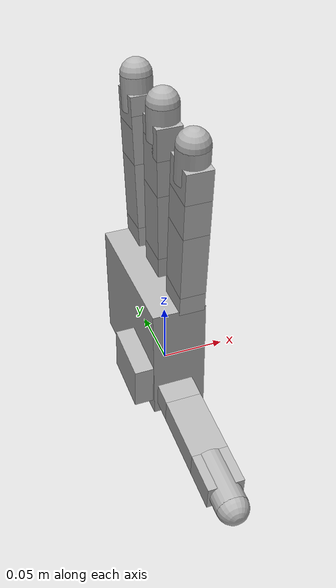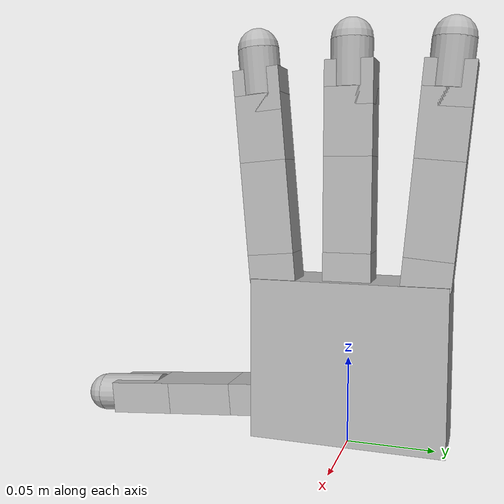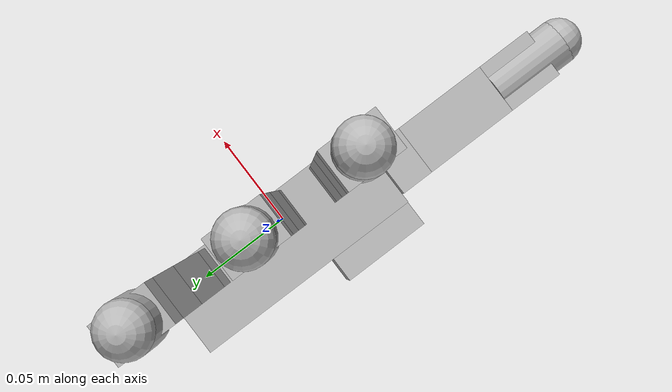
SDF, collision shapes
<?xml version="1.0"?>
<sdf version="1.7">
  <model name="algr_lh_simplified">
    <link name="algr_lh_palm">
      <inertial>
        <mass>0.4154</mass>
        <inertia>
          <ixx>    2.089e-03</ixx>
          <ixy>-0.003635e-03</ixy>
          <ixz>   0.2233e-03</ixz>
          <iyy>    1.829e-03</iyy>
          <iyz> -0.01756e-03</iyz>
          <izz>   0.4825e-03</izz>
        </inertia>
      </inertial>
      <collision name="algr_lh_palm_collision">
        <pose>-0.0093 0 0.0475 0 0 0</pose>
        <geometry>
          <box>
            <size>0.0408 0.113 0.095</size>
          </box>
        </geometry>
      </collision>
      <visual name="algr_lh_palm_visual">
        <pose>0 0 0.095 -1.5708 0 0</pose>
        <geometry>
          <mesh>
            <scale>1 1 1</scale>
            <uri>package://frogger/models/allegro/meshes/base_link_left.obj</uri>
          </mesh>
        </geometry>
      </visual>
    </link>
    <link name="algr_lh_if_bs">
      <pose>0 -0.0435 0.093458 0.087267 0 0</pose>
      <inertial>
        <mass>0.0119</mass>
        <inertia>
          <ixx>   1.954e-06</ixx>
          <ixy>0.003034e-06</ixy>
          <ixz> 0.08923e-06</ixz>
          <iyy>   1.179e-06</iyy>
          <iyz>-0.03707e-06</iyz>
          <izz>   1.497e-06</izz>
        </inertia>
      </inertial>
      <collision name="algr_lh_if_bs_collision">
        <pose>0 0 0.0082 0 0 0</pose>
        <geometry>
          <box>
            <size>0.0196 0.0275 0.0164</size>
          </box>
        </geometry>
      </collision>
      <visual name="algr_lh_if_bs_visual">
        <geometry>
          <mesh>
            <scale>1 1 1</scale>
            <uri>package://frogger/models/allegro/meshes/link_0.0.obj</uri>
          </mesh>
        </geometry>
      </visual>
    </link>
    <joint name="algr_lh_if_axl" type="revolute">
      <child>algr_lh_if_bs</child>
      <parent>algr_lh_palm</parent>
      <axis>
        <xyz expressed_in="__model__">0 -0.087156 0.996195</xyz>
        <limit>
          <lower>-0.47</lower>
          <upper>0.47</upper>
          <effort>0.7</effort>
        </limit>
        <dynamics>
          <damping>1.5e-2</damping>
        </dynamics>
      </axis>
    </joint>
    <link name="algr_lh_if_px">
      <pose>0 -0.044929 0.109796 0.087267 0 0</pose>
      <inertial>
        <mass>0.065</mass>
        <inertia>
          <ixx>  7.192e-05</ixx>
          <ixy>          0</ixy>
          <ixz>          0</ixz>
          <iyy>  7.438e-05</iyy>
          <iyz>0.07322e-05</iyz>
          <izz> 0.5406e-05</izz>
        </inertia>
      </inertial>
      <collision name="algr_lh_if_px_collision">
        <pose>0 0 0.027 0 0 0</pose>
        <geometry>
          <box>
            <size>0.0196 0.0275 0.054</size>
          </box>
        </geometry>
      </collision>
      <visual name="algr_lh_if_px_visual">
        <geometry>
          <mesh>
            <scale>1 1 1</scale>
            <uri>package://frogger/models/allegro/meshes/link_1.0.obj</uri>
          </mesh>
        </geometry>
      </visual>
    </link>
    <joint name="algr_lh_if_mcp" type="revolute">
      <child>algr_lh_if_px</child>
      <parent>algr_lh_if_bs</parent>
      <axis>
        <xyz expressed_in="__model__">0 0.996195 0.087156</xyz>
        <limit>
          <lower>-0.196</lower>
          <upper>1.61</upper>
          <effort>0.7</effort>
        </limit>
        <dynamics>
          <damping>1.5e-2</damping>
        </dynamics>
      </axis>
    </joint>
    <link name="algr_lh_if_md">
      <pose>0 -0.049636 0.16359 0.087267 0 0</pose>
      <inertial>
        <mass>0.0355</mass>
        <inertia>
          <ixx>     3.169e-05</ixx>
          <ixy> 0.0001071e-05</ixy>
          <ixz>-0.0004913e-05</ixz>
          <iyy>     3.105e-05</iyy>
          <iyz>  0.003875e-05</iyz>
          <izz>    0.3203e-05</izz>
        </inertia>
      </inertial>
      <collision name="algr_lh_if_md_collision">
        <pose>0 0 0.0192 0 0 0</pose>
        <geometry>
          <box>
            <size>0.0196 0.0275 0.0384</size>
          </box>
        </geometry>
      </collision>
      <visual name="algr_lh_if_md_visual">
        <geometry>
          <mesh>
            <scale>1 1 1</scale>
            <uri>package://frogger/models/allegro/meshes/link_2.0.obj</uri>
          </mesh>
        </geometry>
      </visual>
    </link>
    <joint name="algr_lh_if_pip" type="revolute">
      <child>algr_lh_if_md</child>
      <parent>algr_lh_if_px</parent>
      <axis>
        <xyz expressed_in="__model__">0 0.996195 0.087156</xyz>
        <limit>
          <lower>-0.174</lower>
          <upper>1.709</upper>
          <effort>0.7</effort>
        </limit>
        <dynamics>
          <damping>1.5e-2</damping>
        </dynamics>
      </axis>
    </joint>
    <link name="algr_lh_if_ds">
      <pose>0 -0.052983 0.201844 0.087267 0 0</pose>
      <inertial>
        <mass>0.0264</mass>
        <inertia>
          <ixx>   1.263e-05</ixx>
          <ixy> 0.00021e-05</ixy>
          <ixz>-0.00098e-05</ixz>
          <iyy>   1.182e-05</iyy>
          <iyz> -0.0013e-05</iyz>
          <izz>  0.2484e-05</izz>
        </inertia>
      </inertial>
      <collision name="algr_lh_if_ds_collision_1">
        <pose>0 0 0.00235 0 0 0</pose>
        <geometry>
          <box>
            <size>0.0196 0.0275 0.0247</size>
          </box>
        </geometry>
      </collision>
      <collision name="algr_lh_if_ds_tip_collision_1_FROGGERCOL">
        <pose>0 0 0.0267 0 0 0</pose>
        <geometry>
          <sphere>
            <radius>0.012</radius>
          </sphere>
        </geometry>
        <drake:proximity_properties>
          <drake:rigid_hydroelastic/>
          <drake:mesh_resolution_hint>0.1</drake:mesh_resolution_hint>
          <drake:hunt_crossley_dissipation>1.0</drake:hunt_crossley_dissipation>
        </drake:proximity_properties>
      </collision>
      <collision name="algr_lh_if_ds_tip_collision_2_FROGGERCOL">
        <pose>0 0 0.01335 0 0 0</pose>
        <geometry>
          <cylinder>
            <length>0.0267</length>
            <radius>0.012</radius>
          </cylinder>
        </geometry>
      </collision>
      <visual name="algr_lh_if_ds_visual">
        <geometry>
          <mesh>
            <scale>1 1 1</scale>
            <uri>package://frogger/models/allegro/meshes/link_3.0.obj</uri>
          </mesh>
        </geometry>
      </visual>
      <visual name="algr_lh_if_ds_tip_visual_1">
        <pose>0 0 0.0267 0 0 0</pose>
        <geometry>
          <mesh>
            <scale>1 1 1</scale>
            <uri>package://frogger/models/allegro/meshes/link_3.0_tip.obj</uri>
          </mesh>
        </geometry>
      </visual>
    </link>
    <joint name="algr_lh_if_dip" type="revolute">
      <child>algr_lh_if_ds</child>
      <parent>algr_lh_if_md</parent>
      <axis>
        <xyz expressed_in="__model__">0 0.996195 0.087156</xyz>
        <limit>
          <lower>-0.227</lower>
          <upper>1.618</upper>
          <effort>0.7</effort>
        </limit>
        <dynamics>
          <damping>1.5e-2</damping>
        </dynamics>
      </axis>
    </joint>
    <link name="algr_lh_mf_bs">
      <pose>0 0 0.0957 0 0 0</pose>
      <inertial>
        <mass>0.0119</mass>
        <inertia>
          <ixx>   1.954e-06</ixx>
          <ixy>0.003034e-06</ixy>
          <ixz> 0.08923e-06</ixz>
          <iyy>   1.179e-06</iyy>
          <iyz>-0.03707e-06</iyz>
          <izz>   1.497e-06</izz>
        </inertia>
      </inertial>
      <collision name="algr_lh_mf_bs_collision">
        <pose>0 0 0.0082 0 0 0</pose>
        <geometry>
          <box>
            <size>0.0196 0.0275 0.0164</size>
          </box>
        </geometry>
      </collision>
      <visual name="algr_lh_mf_bs_visual">
        <geometry>
          <mesh>
            <scale>1 1 1</scale>
            <uri>package://frogger/models/allegro/meshes/link_0.0.obj</uri>
          </mesh>
        </geometry>
      </visual>
    </link>
    <joint name="algr_lh_mf_axl" type="revolute">
      <child>algr_lh_mf_bs</child>
      <parent>algr_lh_palm</parent>
      <axis>
        <xyz expressed_in="__model__">0 0 1</xyz>
        <limit>
          <lower>-0.47</lower>
          <upper>0.47</upper>
          <effort>0.7</effort>
        </limit>
        <dynamics>
          <damping>1.5e-2</damping>
        </dynamics>
      </axis>
    </joint>
    <link name="algr_lh_mf_px">
      <pose>0 0 0.1121 0 0 0</pose>
      <inertial>
        <mass>0.065</mass>
        <inertia>
          <ixx>  7.192e-05</ixx>
          <ixy>          0</ixy>
          <ixz>          0</ixz>
          <iyy>  7.438e-05</iyy>
          <iyz>0.07322e-05</iyz>
          <izz> 0.5406e-05</izz>
        </inertia>
      </inertial>
      <collision name="algr_lh_mf_px_collision">
        <pose>0 0 0.027 0 0 0</pose>
        <geometry>
          <box>
            <size>0.0196 0.0275 0.054</size>
          </box>
        </geometry>
      </collision>
      <visual name="algr_lh_mf_px_visual">
        <geometry>
          <mesh>
            <scale>1 1 1</scale>
            <uri>package://frogger/models/allegro/meshes/link_1.0.obj</uri>
          </mesh>
        </geometry>
      </visual>
    </link>
    <joint name="algr_lh_mf_mcp" type="revolute">
      <child>algr_lh_mf_px</child>
      <parent>algr_lh_mf_bs</parent>
      <axis>
        <xyz expressed_in="__model__">0 1 0</xyz>
        <limit>
          <lower>-0.196</lower>
          <upper>1.61</upper>
          <effort>0.7</effort>
        </limit>
        <dynamics>
          <damping>1.5e-2</damping>
        </dynamics>
      </axis>
    </joint>
    <link name="algr_lh_mf_md">
      <pose>0 0 0.1661 0 0 0</pose>
      <inertial>
        <mass>0.0355</mass>
        <inertia>
          <ixx>     3.169e-05</ixx>
          <ixy> 0.0001071e-05</ixy>
          <ixz>-0.0004913e-05</ixz>
          <iyy>     3.105e-05</iyy>
          <iyz>  0.003875e-05</iyz>
          <izz>    0.3203e-05</izz>
        </inertia>
      </inertial>
      <collision name="algr_lh_mf_md_collision">
        <pose>0 0 0.0192 0 0 0</pose>
        <geometry>
          <box>
            <size>0.0196 0.0275 0.0384</size>
          </box>
        </geometry>
      </collision>
      <visual name="algr_lh_mf_md_visual">
        <geometry>
          <mesh>
            <scale>1 1 1</scale>
            <uri>package://frogger/models/allegro/meshes/link_2.0.obj</uri>
          </mesh>
        </geometry>
      </visual>
    </link>
    <joint name="algr_lh_mf_pip" type="revolute">
      <child>algr_lh_mf_md</child>
      <parent>algr_lh_mf_px</parent>
      <axis>
        <xyz expressed_in="__model__">0 1 0</xyz>
        <limit>
          <lower>-0.174</lower>
          <upper>1.709</upper>
          <effort>0.7</effort>
        </limit>
        <dynamics>
          <damping>1.5e-2</damping>
        </dynamics>
      </axis>
    </joint>
    <link name="algr_lh_mf_ds">
      <pose>0 0 0.2045 0 0 0</pose>
      <inertial>
        <mass>0.0264</mass>
        <inertia>
          <ixx>   1.263e-05</ixx>
          <ixy> 0.00021e-05</ixy>
          <ixz>-0.00098e-05</ixz>
          <iyy>   1.182e-05</iyy>
          <iyz> -0.0013e-05</iyz>
          <izz>  0.2484e-05</izz>
        </inertia>
      </inertial>
      <collision name="algr_lh_mf_ds_collision_1">
        <pose>0 0 0.00235 0 0 0</pose>
        <geometry>
          <box>
            <size>0.0196 0.0275 0.0247</size>
          </box>
        </geometry>
      </collision>
      <collision name="algr_lh_mf_ds_tip_collision_1_FROGGERCOL">
        <pose>0 0 0.0267 0 0 0</pose>
        <geometry>
          <sphere>
            <radius>0.012</radius>
          </sphere>
        </geometry>
        <drake:proximity_properties>
          <drake:rigid_hydroelastic/>
          <drake:mesh_resolution_hint>0.1</drake:mesh_resolution_hint>
          <drake:hunt_crossley_dissipation>1.0</drake:hunt_crossley_dissipation>
        </drake:proximity_properties>
      </collision>
      <collision name="algr_lh_mf_ds_tip_collision_2_FROGGERCOL">
        <pose>0 0 0.01335 0 0 0</pose>
        <geometry>
          <cylinder>
            <length>0.0267</length>
            <radius>0.012</radius>
          </cylinder>
        </geometry>
      </collision>
      <visual name="algr_lh_mf_ds_visual">
        <geometry>
          <mesh>
            <scale>1 1 1</scale>
            <uri>package://frogger/models/allegro/meshes/link_3.0.obj</uri>
          </mesh>
        </geometry>
      </visual>
      <visual name="algr_lh_mf_ds_tip_visual_1">
        <pose>0 0 0.0267 0 0 0</pose>
        <geometry>
          <mesh>
            <scale>1 1 1</scale>
            <uri>package://frogger/models/allegro/meshes/link_3.0_tip.obj</uri>
          </mesh>
        </geometry>
      </visual>
    </link>
    <joint name="algr_lh_mf_dip" type="revolute">
      <child>algr_lh_mf_ds</child>
      <parent>algr_lh_mf_md</parent>
      <axis>
        <xyz expressed_in="__model__">0 1 0</xyz>
        <limit>
          <lower>-0.227</lower>
          <upper>1.618</upper>
          <effort>0.7</effort>
        </limit>
        <dynamics>
          <damping>1.5e-2</damping>
        </dynamics>
      </axis>
    </joint>
    <link name="algr_lh_rf_bs">
      <pose>0 0.0435 0.093458 -0.087267 0 0</pose>
      <inertial>
        <mass>0.0119</mass>
        <inertia>
          <ixx>   1.954e-06</ixx>
          <ixy>0.003034e-06</ixy>
          <ixz> 0.08923e-06</ixz>
          <iyy>   1.179e-06</iyy>
          <iyz>-0.03707e-06</iyz>
          <izz>   1.497e-06</izz>
        </inertia>
      </inertial>
      <collision name="algr_lh_rf_bs_collision">
        <pose>0 0 0.0082 0 0 0</pose>
        <geometry>
          <box>
            <size>0.0196 0.0275 0.0164</size>
          </box>
        </geometry>
      </collision>
      <visual name="algr_lh_rf_bs_visual">
        <geometry>
          <mesh>
            <scale>1 1 1</scale>
            <uri>package://frogger/models/allegro/meshes/link_0.0.obj</uri>
          </mesh>
        </geometry>
      </visual>
    </link>
    <joint name="algr_lh_rf_axl" type="revolute">
      <child>algr_lh_rf_bs</child>
      <parent>algr_lh_palm</parent>
      <axis>
        <xyz expressed_in="__model__">0 0.087156 0.996195</xyz>
        <limit>
          <lower>-0.47</lower>
          <upper>0.47</upper>
          <effort>0.7</effort>
        </limit>
        <dynamics>
          <damping>1.5e-2</damping>
        </dynamics>
      </axis>
    </joint>
    <link name="algr_lh_rf_px">
      <pose>0 0.044929 0.109796 -0.087267 0 0</pose>
      <inertial>
        <mass>0.065</mass>
        <inertia>
          <ixx>  7.192e-05</ixx>
          <ixy>          0</ixy>
          <ixz>          0</ixz>
          <iyy>  7.438e-05</iyy>
          <iyz>0.07322e-05</iyz>
          <izz> 0.5406e-05</izz>
        </inertia>
      </inertial>
      <collision name="algr_lh_rf_px_collision">
        <pose>0 0 0.027 0 0 0</pose>
        <geometry>
          <box>
            <size>0.0196 0.0275 0.054</size>
          </box>
        </geometry>
      </collision>
      <visual name="algr_lh_rf_px_visual">
        <geometry>
          <mesh>
            <scale>1 1 1</scale>
            <uri>package://frogger/models/allegro/meshes/link_1.0.obj</uri>
          </mesh>
        </geometry>
      </visual>
    </link>
    <joint name="algr_lh_rf_mcp" type="revolute">
      <child>algr_lh_rf_px</child>
      <parent>algr_lh_rf_bs</parent>
      <axis>
        <xyz expressed_in="__model__">0 0.996195 -0.087156</xyz>
        <limit>
          <lower>-0.196</lower>
          <upper>1.61</upper>
          <effort>0.7</effort>
        </limit>
        <dynamics>
          <damping>1.5e-2</damping>
        </dynamics>
      </axis>
    </joint>
    <link name="algr_lh_rf_md">
      <pose>0 0.049636 0.16359 -0.087267 0 0</pose>
      <inertial>
        <mass>0.0355</mass>
        <inertia>
          <ixx>     3.169e-05</ixx>
          <ixy> 0.0001071e-05</ixy>
          <ixz>-0.0004913e-05</ixz>
          <iyy>     3.105e-05</iyy>
          <iyz>  0.003875e-05</iyz>
          <izz>    0.3203e-05</izz>
        </inertia>
      </inertial>
      <collision name="algr_lh_rf_md_collision">
        <pose>0 0 0.0192 0 0 0</pose>
        <geometry>
          <box>
            <size>0.0196 0.0275 0.0384</size>
          </box>
        </geometry>
      </collision>
      <visual name="algr_lh_rf_md_visual">
        <geometry>
          <mesh>
            <scale>1 1 1</scale>
            <uri>package://frogger/models/allegro/meshes/link_2.0.obj</uri>
          </mesh>
        </geometry>
      </visual>
    </link>
    <joint name="algr_lh_rf_pip" type="revolute">
      <child>algr_lh_rf_md</child>
      <parent>algr_lh_rf_px</parent>
      <axis>
        <xyz expressed_in="__model__">0 0.996195 -0.087156</xyz>
        <limit>
          <lower>-0.174</lower>
          <upper>1.709</upper>
          <effort>0.7</effort>
        </limit>
        <dynamics>
          <damping>1.5e-2</damping>
        </dynamics>
      </axis>
    </joint>
    <link name="algr_lh_rf_ds">
      <pose>0 0.052983 0.201844 -0.087267 0 0</pose>
      <inertial>
        <mass>0.0264</mass>
        <inertia>
          <ixx>   1.263e-05</ixx>
          <ixy> 0.00021e-05</ixy>
          <ixz>-0.00098e-05</ixz>
          <iyy>   1.182e-05</iyy>
          <iyz> -0.0013e-05</iyz>
          <izz>  0.2484e-05</izz>
        </inertia>
      </inertial>
      <collision name="algr_lh_rf_ds_collision_1">
        <pose>0 0 0.00235 0 0 0</pose>
        <geometry>
          <box>
            <size>0.0196 0.0275 0.0247</size>
          </box>
        </geometry>
      </collision>
      <collision name="algr_lh_rf_ds_tip_collision_1_FROGGERCOL">
        <pose>0 0 0.0267 0 0 0</pose>
        <geometry>
          <sphere>
            <radius>0.012</radius>
          </sphere>
        </geometry>
        <drake:proximity_properties>
          <drake:rigid_hydroelastic/>
          <drake:mesh_resolution_hint>0.1</drake:mesh_resolution_hint>
          <drake:hunt_crossley_dissipation>1.0</drake:hunt_crossley_dissipation>
        </drake:proximity_properties>
      </collision>
      <collision name="algr_lh_rf_ds_tip_collision_2_FROGGERCOL">
        <pose>0 0 0.01335 0 0 0</pose>
        <geometry>
          <cylinder>
            <length>0.0267</length>
            <radius>0.012</radius>
          </cylinder>
        </geometry>
      </collision>
      <visual name="algr_lh_rf_ds_visual">
        <geometry>
          <mesh>
            <scale>1 1 1</scale>
            <uri>package://frogger/models/allegro/meshes/link_3.0.obj</uri>
          </mesh>
        </geometry>
      </visual>
      <visual name="algr_lh_rf_ds_tip_visual_1">
        <pose>0 0 0.0267 0 0 0</pose>
        <geometry>
          <mesh>
            <scale>1 1 1</scale>
            <uri>package://frogger/models/allegro/meshes/link_3.0_tip.obj</uri>
          </mesh>
        </geometry>
      </visual>
    </link>
    <joint name="algr_lh_rf_dip" type="revolute">
      <child>algr_lh_rf_ds</child>
      <parent>algr_lh_rf_md</parent>
      <axis>
        <xyz expressed_in="__model__">0 0.996195 -0.087156</xyz>
        <limit>
          <lower>-0.227</lower>
          <upper>1.618</upper>
          <effort>0.7</effort>
        </limit>
        <dynamics>
          <damping>1.5e-2</damping>
        </dynamics>
      </axis>
    </joint>
    <link name="algr_lh_th_mp">
      <pose>-0.0182 -0.019333 0.049013 -3.14159 -1.48353 -1.5708</pose>
      <inertial>
        <mass>0.0176</mass>
        <inertia>
          <ixx> 0.8139e-05</ixx>
          <ixy> 0.2552e-05</ixy>
          <ixz> 0.3899e-05</ixz>
          <iyy>  1.314e-05</iyy>
          <iyz>-0.1463e-05</iyz>
          <izz>  1.002e-05</izz>
        </inertia>
      </inertial>
      <collision name="algr_lh_th_mp_collision">
        <pose>-0.0179 0.009 0.0145 0 0 0</pose>
        <geometry>
          <box>
            <size>0.0358 0.034 0.0455</size>
          </box>
        </geometry>
      </collision>
      <visual name="algr_lh_th_mp_visual">
        <pose>0 0 0 3.14159 0 0</pose>
        <geometry>
          <mesh>
            <scale>1 1 1</scale>
            <uri>package://frogger/models/allegro/meshes/link_12.0_left.obj</uri>
          </mesh>
        </geometry>
      </visual>
    </link>
    <joint name="algr_lh_th_cmc" type="revolute">
      <child>algr_lh_th_mp</child>
      <parent>algr_lh_palm</parent>
      <axis>
        <xyz expressed_in="__model__">-0 -0.087156 0.996195</xyz>
        <limit>
          <lower>0.263</lower>
          <upper>1.396</upper>
          <effort>0.7</effort>
        </limit>
        <dynamics>
          <damping>1.5e-2</damping>
        </dynamics>
      </axis>
    </joint>
    <link name="algr_lh_th_bs">
      <pose>-0.0132 -0.056728 0.018638 -3.14159 -1.48353 -1.5708</pose>
      <inertial>
        <mass>0.0119</mass>
        <inertia>
          <ixx>   1.926e-06</ixx>
          <ixy> 0.00305e-06</ixy>
          <ixz> 0.08866e-06</ixz>
          <iyy>   1.153e-06</iyy>
          <iyz>-0.03645e-06</iyz>
          <izz>   1.496e-06</izz>
        </inertia>
      </inertial>
      <!-- [NOTE] this collision geometry caused problems for the Drake team -->
      <collision name='algr_lh_th_bs_collision'>
        <pose>0 0 0.00885 0 0 0</pose>
        <geometry>
          <box>
            <size>0.0196 0.0275 0.0177</size>
          </box>
        </geometry>
      </collision>
      <visual name="algr_lh_th_bs_visual">
        <geometry>
          <mesh>
            <scale>1 1 1</scale>
            <uri>package://frogger/models/allegro/meshes/link_13.0.obj</uri>
          </mesh>
        </geometry>
      </visual>
    </link>
    <joint name="algr_lh_th_axl" type="revolute">
      <child>algr_lh_th_bs</child>
      <parent>algr_lh_th_mp</parent>
      <axis>
        <xyz expressed_in="__model__">0 0.996195 0.087156</xyz>
        <limit>
          <lower>-0.105</lower>
          <upper>1.163</upper>
          <effort>0.7</effort>
        </limit>
        <dynamics>
          <damping>1.5e-2</damping>
        </dynamics>
      </axis>
    </joint>
    <link name="algr_lh_th_px">
      <pose>-0.0132 -0.074361 0.017096 -3.14159 -1.48353 -1.5708</pose>
      <inertial>
        <mass>0.038</mass>
        <inertia>
          <ixx>  3.670e-05</ixx>
          <ixy> 0.0001e-05</ixy>
          <ixz>0.01485e-05</ixz>
          <iyy>  3.540e-05</iyy>
          <iyz>-0.0037e-05</iyz>
          <izz> 0.3633e-05</izz>
        </inertia>
      </inertial>
      <collision name="algr_lh_th_px_collision">
        <pose>0 0 0.0257 0 0 0</pose>
        <geometry>
          <box>
            <size>0.0196 0.0275 0.0514</size>
          </box>
        </geometry>
      </collision>
      <visual name="algr_lh_th_px_visual">
        <geometry>
          <mesh>
            <scale>1 1 1</scale>
            <uri>package://frogger/models/allegro/meshes/link_14.0.obj</uri>
          </mesh>
        </geometry>
      </visual>
    </link>
    <joint name="algr_lh_th_mcp" type="revolute">
      <child>algr_lh_th_px</child>
      <parent>algr_lh_th_bs</parent>
      <axis>
        <xyz expressed_in="__model__">-1 0 0</xyz>
        <limit>
          <lower>-0.189</lower>
          <upper>1.644</upper>
          <effort>0.7</effort>
        </limit>
        <dynamics>
          <damping>1.5e-2</damping>
        </dynamics>
      </axis>
    </joint>
    <link name="algr_lh_th_ds">
      <pose>-0.0132 -0.125565 0.012616 -3.14159 -1.48353 -1.5708</pose>
      <inertial>
        <pose>0 0 0.012781 0 0 0</pose>
        <mass>0.0556</mass>
        <inertia>
          <ixx>  7.054e-05</ixx>
          <ixy>          0</ixy>
          <ixz>          0</ixz>
          <iyy>  6.564e-05</iyy>
          <iyz>-0.0033e-05</iyz>
          <izz>  1.954e-05</izz>
        </inertia>
      </inertial>
      <collision name="algr_lh_th_ds_collision_1">
        <pose>0 0 0.01015 0 0 0</pose>
        <geometry>
          <box>
            <size>0.0196 0.0275 0.0403</size>
          </box>
        </geometry>
      </collision>
      <collision name="algr_lh_th_ds_tip_collision_1_FROGGERCOL">
        <pose>0 0 0.0423 0 0 0</pose>
        <geometry>
          <sphere>
            <radius>0.012</radius>
          </sphere>
        </geometry>
        <drake:proximity_properties>
          <drake:rigid_hydroelastic/>
          <drake:mesh_resolution_hint>0.1</drake:mesh_resolution_hint>
          <drake:hunt_crossley_dissipation>1.0</drake:hunt_crossley_dissipation>
        </drake:proximity_properties>
      </collision>
      <collision name="algr_lh_th_ds_tip_collision_2_FROGGERCOL">
        <pose>0 0 0.02115 0 0 0</pose>
        <geometry>
          <cylinder>
            <length>0.0423</length>
            <radius>0.012</radius>
          </cylinder>
        </geometry>
      </collision>
      <visual name="algr_lh_th_ds_visual">
        <geometry>
          <mesh>
            <scale>1 1 1</scale>
            <uri>package://frogger/models/allegro/meshes/link_15.0.obj</uri>
          </mesh>
        </geometry>
      </visual>
      <visual name="algr_lh_th_ds_tip_visual_1">
        <pose>0 0 0.0423 0 0 0</pose>
        <geometry>
          <mesh>
            <scale>1 1 1</scale>
            <uri>package://frogger/models/allegro/meshes/link_15.0_tip.obj</uri>
          </mesh>
        </geometry>
      </visual>
    </link>
    <joint name="algr_lh_th_ipl" type="revolute">
      <child>algr_lh_th_ds</child>
      <parent>algr_lh_th_px</parent>
      <axis>
        <xyz expressed_in="__model__">-1 0 0</xyz>
        <limit>
          <lower>-0.162</lower>
          <upper>1.719</upper>
          <effort>0.7</effort>
        </limit>
        <dynamics>
          <damping>1.5e-2</damping>
        </dynamics>
      </axis>
    </joint>
    <drake:collision_filter_group name="thumb_base_cfg">
      <drake:member>algr_lh_th_bs</drake:member>
      <drake:member>algr_lh_palm</drake:member>
      <drake:ignored_collision_filter_group>
        thumb_base_cfg
      </drake:ignored_collision_filter_group>
    </drake:collision_filter_group>

    <!-- adding frame for heuristic IK sampling -->
    <joint name="dummy_sampling_joint" type="fixed">
      <child>algr_rh_palm_FROGGERSAMPLE</child>
      <parent>algr_rh_palm</parent>
      <pose>0.0 0.0 0.0 0.0 0.0 0.0</pose>
    </joint>
    <link name="algr_rh_palm_FROGGERSAMPLE">
      <pose>0.0 0.0 0.095 0.0 0.0 0.0</pose>
    </link>
  </model>
</sdf>
